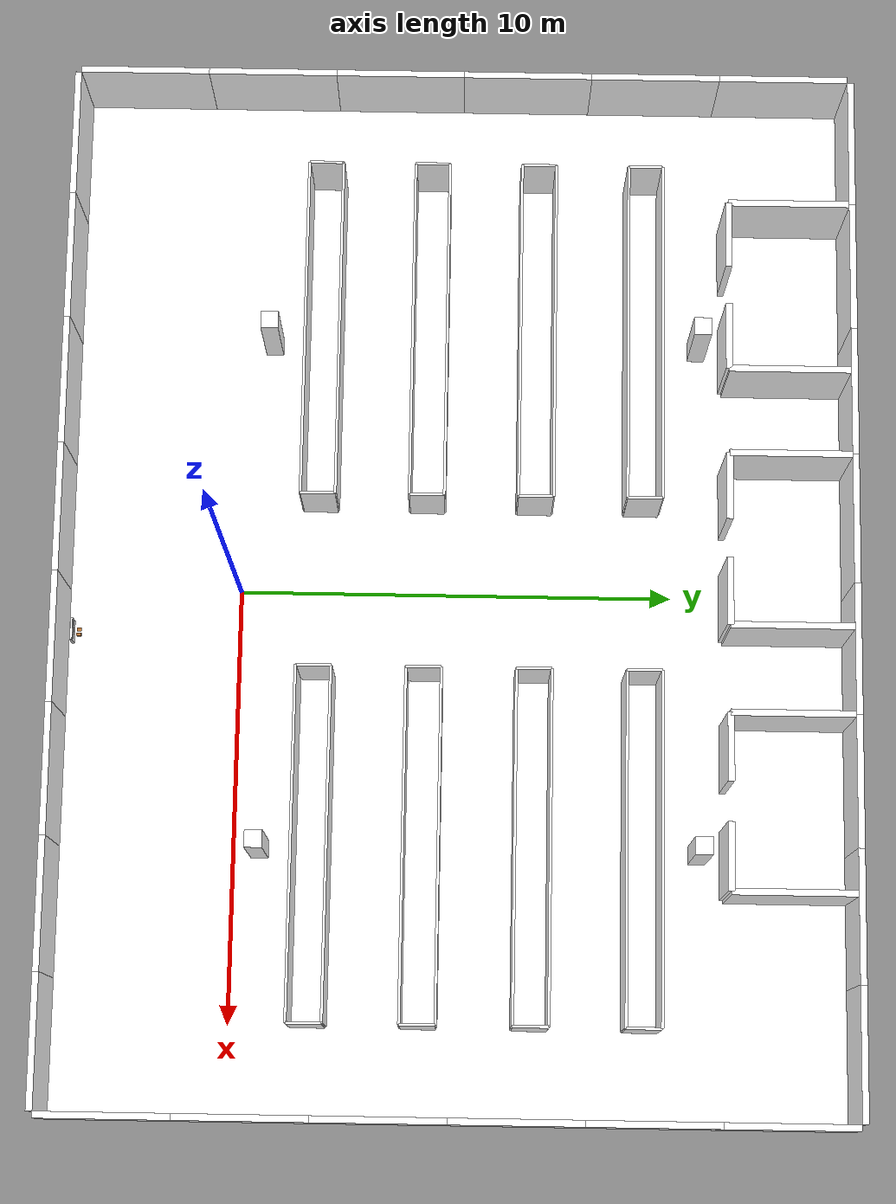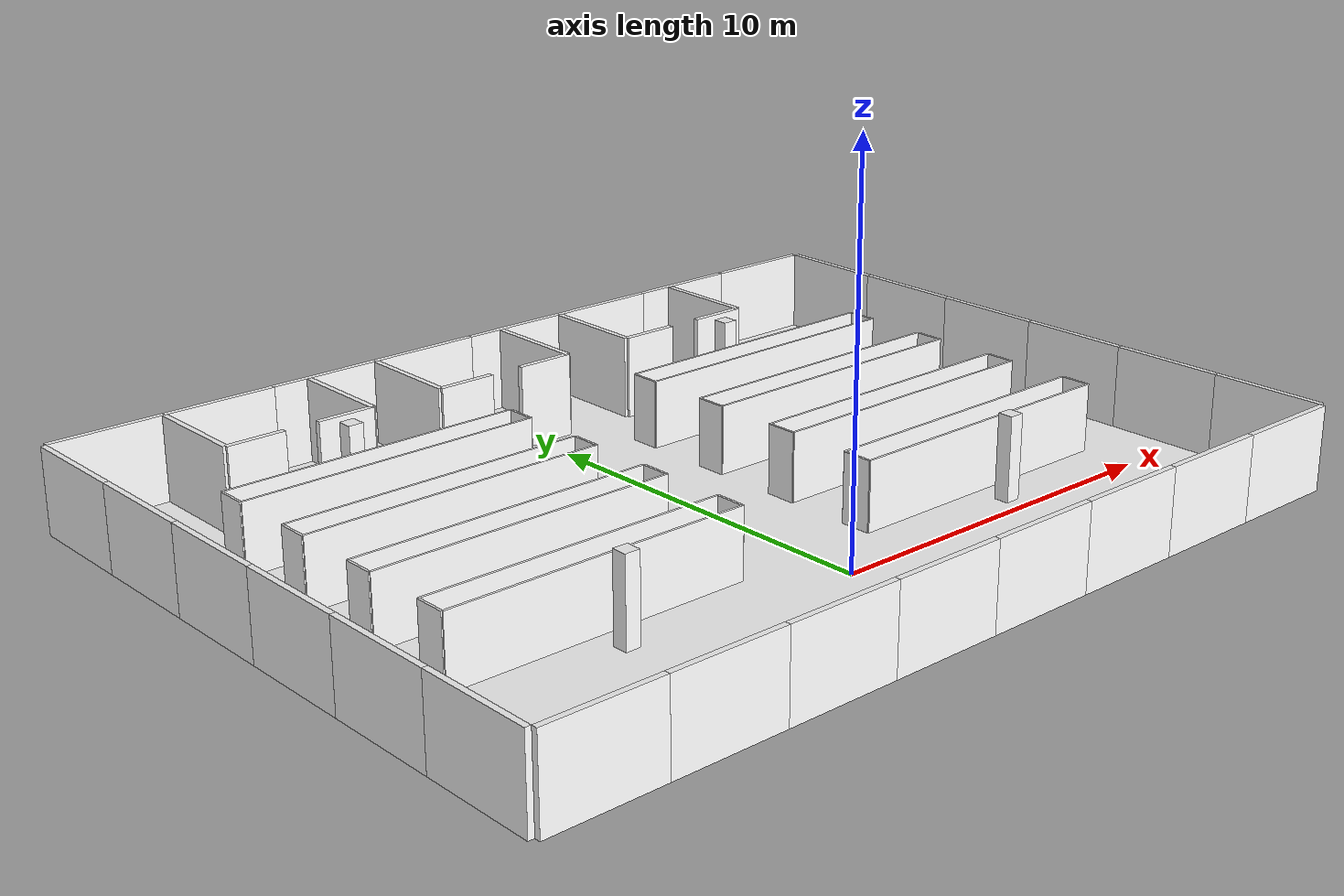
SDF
<?xml version="1.0" ?>
<!-- generate_hall.py 로 생성됨. 직접 수정하지 말고 생성기를 고치세요. -->
<sdf version="1.9">
  <world name="hall">

    <physics name="1ms" type="ignored">
      <max_step_size>0.001</max_step_size>
      <real_time_factor>1.0</real_time_factor>
    </physics>

    <plugin filename="gz-sim-physics-system"
            name="gz::sim::systems::Physics"/>
    <plugin filename="gz-sim-user-commands-system"
            name="gz::sim::systems::UserCommands"/>
    <plugin filename="gz-sim-scene-broadcaster-system"
            name="gz::sim::systems::SceneBroadcaster"/>
    <!-- 카메라/뎁스 렌더링에 필요 -->
    <plugin filename="gz-sim-sensors-system"
            name="gz::sim::systems::Sensors">
      <render_engine>ogre2</render_engine>
    </plugin>
    <plugin filename="gz-sim-imu-system"
            name="gz::sim::systems::Imu"/>
    <plugin filename="gz-sim-contact-system"
            name="gz::sim::systems::Contact"/>

    <gravity>0 0 -9.8</gravity>

    <scene>
      <ambient>0.65 0.65 0.65 1</ambient>
      <background>0.75 0.82 0.9 1</background>
      <shadows>true</shadows>
    </scene>

    <!-- 넓은 공간이라 광원을 셋으로 나눕니다. 그림자로 특징점이 사라지는
         구역이 생기면 VSLAM 이 그 자리에서 끊깁니다. -->
    <light type="directional" name="sun">
      <cast_shadows>true</cast_shadows>
      <pose>0 0 10 0 0 0</pose>
      <diffuse>0.6 0.6 0.6 1</diffuse>
      <specular>0.1 0.1 0.1 1</specular>
      <direction>-0.4 0.3 -0.9</direction>
    </light>
    <light type="directional" name="fill1">
      <cast_shadows>false</cast_shadows>
      <pose>0 0 10 0 0 0</pose>
      <diffuse>0.3 0.3 0.34 1</diffuse>
      <specular>0 0 0 1</specular>
      <direction>0.5 -0.4 -0.8</direction>
    </light>
    <light type="directional" name="fill2">
      <cast_shadows>false</cast_shadows>
      <pose>0 0 10 0 0 0</pose>
      <diffuse>0.25 0.25 0.28 1</diffuse>
      <specular>0 0 0 1</specular>
      <direction>0.1 0.9 -0.6</direction>
    </light>

    <model name="ground_plane">
      <static>true</static>
      <link name="link">
        <collision name="collision">
          <geometry><plane><normal>0 0 1</normal><size>200 200</size></plane></geometry>
          <surface><friction><ode><mu>1.0</mu><mu2>1.0</mu2></ode></friction></surface>
        </collision>
      </link>
    </model>

    <model name="floor">
      <static>true</static>
      <pose>0.000 5.000 -0.005 0 0 0</pose>
      <link name="link"><visual name="v">
        <geometry><box><size>24.00 18.00 0.01</size></box></geometry>
        <material><diffuse>1 1 1 1</diffuse><pbr><metal>
          <albedo_map>model://room_materials/materials/textures/floor.png</albedo_map><roughness>0.95</roughness>
        </metal></pbr></material>
      </visual></link>
    </model>
    <model name="wall_s_0">
      <static>true</static>
      <pose>-10.5000 -4.0750 1.1000 0 0 0</pose>
      <link name="link">
      <collision name="c">
        <pose>0 0 0 0 0 0</pose>
        <geometry><box><size>3.0000 0.1500 2.2000</size></box></geometry>
      </collision>
      <visual name="v">
        <pose>0 0 0 0 0 0</pose>
        <geometry><box><size>3.0000 0.1500 2.2000</size></box></geometry>
        <material>
          <diffuse>1 1 1 1</diffuse>
          <pbr><metal>
            <albedo_map>model://room_materials/materials/textures/hall_000.png</albedo_map>
            <roughness>0.9</roughness>
          </metal></pbr>
        </material>
      </visual>
      </link>
    </model>
    <model name="wall_n_1">
      <static>true</static>
      <pose>-10.5000 14.0750 1.1000 0 0 0</pose>
      <link name="link">
      <collision name="c">
        <pose>0 0 0 0 0 0</pose>
        <geometry><box><size>3.0000 0.1500 2.2000</size></box></geometry>
      </collision>
      <visual name="v">
        <pose>0 0 0 0 0 0</pose>
        <geometry><box><size>3.0000 0.1500 2.2000</size></box></geometry>
        <material>
          <diffuse>1 1 1 1</diffuse>
          <pbr><metal>
            <albedo_map>model://room_materials/materials/textures/hall_001.png</albedo_map>
            <roughness>0.9</roughness>
          </metal></pbr>
        </material>
      </visual>
      </link>
    </model>
    <model name="wall_s_2">
      <static>true</static>
      <pose>-7.5000 -4.0750 1.1000 0 0 0</pose>
      <link name="link">
      <collision name="c">
        <pose>0 0 0 0 0 0</pose>
        <geometry><box><size>3.0000 0.1500 2.2000</size></box></geometry>
      </collision>
      <visual name="v">
        <pose>0 0 0 0 0 0</pose>
        <geometry><box><size>3.0000 0.1500 2.2000</size></box></geometry>
        <material>
          <diffuse>1 1 1 1</diffuse>
          <pbr><metal>
            <albedo_map>model://room_materials/materials/textures/hall_002.png</albedo_map>
            <roughness>0.9</roughness>
          </metal></pbr>
        </material>
      </visual>
      </link>
    </model>
    <model name="wall_n_3">
      <static>true</static>
      <pose>-7.5000 14.0750 1.1000 0 0 0</pose>
      <link name="link">
      <collision name="c">
        <pose>0 0 0 0 0 0</pose>
        <geometry><box><size>3.0000 0.1500 2.2000</size></box></geometry>
      </collision>
      <visual name="v">
        <pose>0 0 0 0 0 0</pose>
        <geometry><box><size>3.0000 0.1500 2.2000</size></box></geometry>
        <material>
          <diffuse>1 1 1 1</diffuse>
          <pbr><metal>
            <albedo_map>model://room_materials/materials/textures/hall_003.png</albedo_map>
            <roughness>0.9</roughness>
          </metal></pbr>
        </material>
      </visual>
      </link>
    </model>
    <model name="wall_s_4">
      <static>true</static>
      <pose>-4.5000 -4.0750 1.1000 0 0 0</pose>
      <link name="link">
      <collision name="c">
        <pose>0 0 0 0 0 0</pose>
        <geometry><box><size>3.0000 0.1500 2.2000</size></box></geometry>
      </collision>
      <visual name="v">
        <pose>0 0 0 0 0 0</pose>
        <geometry><box><size>3.0000 0.1500 2.2000</size></box></geometry>
        <material>
          <diffuse>1 1 1 1</diffuse>
          <pbr><metal>
            <albedo_map>model://room_materials/materials/textures/hall_004.png</albedo_map>
            <roughness>0.9</roughness>
          </metal></pbr>
        </material>
      </visual>
      </link>
    </model>
    <model name="wall_n_5">
      <static>true</static>
      <pose>-4.5000 14.0750 1.1000 0 0 0</pose>
      <link name="link">
      <collision name="c">
        <pose>0 0 0 0 0 0</pose>
        <geometry><box><size>3.0000 0.1500 2.2000</size></box></geometry>
      </collision>
      <visual name="v">
        <pose>0 0 0 0 0 0</pose>
        <geometry><box><size>3.0000 0.1500 2.2000</size></box></geometry>
        <material>
          <diffuse>1 1 1 1</diffuse>
          <pbr><metal>
            <albedo_map>model://room_materials/materials/textures/hall_005.png</albedo_map>
            <roughness>0.9</roughness>
          </metal></pbr>
        </material>
      </visual>
      </link>
    </model>
    <model name="wall_s_6">
      <static>true</static>
      <pose>-1.5000 -4.0750 1.1000 0 0 0</pose>
      <link name="link">
      <collision name="c">
        <pose>0 0 0 0 0 0</pose>
        <geometry><box><size>3.0000 0.1500 2.2000</size></box></geometry>
      </collision>
      <visual name="v">
        <pose>0 0 0 0 0 0</pose>
        <geometry><box><size>3.0000 0.1500 2.2000</size></box></geometry>
        <material>
          <diffuse>1 1 1 1</diffuse>
          <pbr><metal>
            <albedo_map>model://room_materials/materials/textures/hall_006.png</albedo_map>
            <roughness>0.9</roughness>
          </metal></pbr>
        </material>
      </visual>
      </link>
    </model>
    <model name="wall_n_7">
      <static>true</static>
      <pose>-1.5000 14.0750 1.1000 0 0 0</pose>
      <link name="link">
      <collision name="c">
        <pose>0 0 0 0 0 0</pose>
        <geometry><box><size>3.0000 0.1500 2.2000</size></box></geometry>
      </collision>
      <visual name="v">
        <pose>0 0 0 0 0 0</pose>
        <geometry><box><size>3.0000 0.1500 2.2000</size></box></geometry>
        <material>
          <diffuse>1 1 1 1</diffuse>
          <pbr><metal>
            <albedo_map>model://room_materials/materials/textures/hall_007.png</albedo_map>
            <roughness>0.9</roughness>
          </metal></pbr>
        </material>
      </visual>
      </link>
    </model>
    <model name="wall_s_8">
      <static>true</static>
      <pose>1.5000 -4.0750 1.1000 0 0 0</pose>
      <link name="link">
      <collision name="c">
        <pose>0 0 0 0 0 0</pose>
        <geometry><box><size>3.0000 0.1500 2.2000</size></box></geometry>
      </collision>
      <visual name="v">
        <pose>0 0 0 0 0 0</pose>
        <geometry><box><size>3.0000 0.1500 2.2000</size></box></geometry>
        <material>
          <diffuse>1 1 1 1</diffuse>
          <pbr><metal>
            <albedo_map>model://room_materials/materials/textures/hall_008.png</albedo_map>
            <roughness>0.9</roughness>
          </metal></pbr>
        </material>
      </visual>
      </link>
    </model>
    <model name="wall_n_9">
      <static>true</static>
      <pose>1.5000 14.0750 1.1000 0 0 0</pose>
      <link name="link">
      <collision name="c">
        <pose>0 0 0 0 0 0</pose>
        <geometry><box><size>3.0000 0.1500 2.2000</size></box></geometry>
      </collision>
      <visual name="v">
        <pose>0 0 0 0 0 0</pose>
        <geometry><box><size>3.0000 0.1500 2.2000</size></box></geometry>
        <material>
          <diffuse>1 1 1 1</diffuse>
          <pbr><metal>
            <albedo_map>model://room_materials/materials/textures/hall_009.png</albedo_map>
            <roughness>0.9</roughness>
          </metal></pbr>
        </material>
      </visual>
      </link>
    </model>
    <model name="wall_s_10">
      <static>true</static>
      <pose>4.5000 -4.0750 1.1000 0 0 0</pose>
      <link name="link">
      <collision name="c">
        <pose>0 0 0 0 0 0</pose>
        <geometry><box><size>3.0000 0.1500 2.2000</size></box></geometry>
      </collision>
      <visual name="v">
        <pose>0 0 0 0 0 0</pose>
        <geometry><box><size>3.0000 0.1500 2.2000</size></box></geometry>
        <material>
          <diffuse>1 1 1 1</diffuse>
          <pbr><metal>
            <albedo_map>model://room_materials/materials/textures/hall_010.png</albedo_map>
            <roughness>0.9</roughness>
          </metal></pbr>
        </material>
      </visual>
      </link>
    </model>
    <model name="wall_n_11">
      <static>true</static>
      <pose>4.5000 14.0750 1.1000 0 0 0</pose>
      <link name="link">
      <collision name="c">
        <pose>0 0 0 0 0 0</pose>
        <geometry><box><size>3.0000 0.1500 2.2000</size></box></geometry>
      </collision>
      <visual name="v">
        <pose>0 0 0 0 0 0</pose>
        <geometry><box><size>3.0000 0.1500 2.2000</size></box></geometry>
        <material>
          <diffuse>1 1 1 1</diffuse>
          <pbr><metal>
            <albedo_map>model://room_materials/materials/textures/hall_011.png</albedo_map>
            <roughness>0.9</roughness>
          </metal></pbr>
        </material>
      </visual>
      </link>
    </model>
    <model name="wall_s_12">
      <static>true</static>
      <pose>7.5000 -4.0750 1.1000 0 0 0</pose>
      <link name="link">
      <collision name="c">
        <pose>0 0 0 0 0 0</pose>
        <geometry><box><size>3.0000 0.1500 2.2000</size></box></geometry>
      </collision>
      <visual name="v">
        <pose>0 0 0 0 0 0</pose>
        <geometry><box><size>3.0000 0.1500 2.2000</size></box></geometry>
        <material>
          <diffuse>1 1 1 1</diffuse>
          <pbr><metal>
            <albedo_map>model://room_materials/materials/textures/hall_012.png</albedo_map>
            <roughness>0.9</roughness>
          </metal></pbr>
        </material>
      </visual>
      </link>
    </model>
    <model name="wall_n_13">
      <static>true</static>
      <pose>7.5000 14.0750 1.1000 0 0 0</pose>
      <link name="link">
      <collision name="c">
        <pose>0 0 0 0 0 0</pose>
        <geometry><box><size>3.0000 0.1500 2.2000</size></box></geometry>
      </collision>
      <visual name="v">
        <pose>0 0 0 0 0 0</pose>
        <geometry><box><size>3.0000 0.1500 2.2000</size></box></geometry>
        <material>
          <diffuse>1 1 1 1</diffuse>
          <pbr><metal>
            <albedo_map>model://room_materials/materials/textures/hall_013.png</albedo_map>
            <roughness>0.9</roughness>
          </metal></pbr>
        </material>
      </visual>
      </link>
    </model>
    <model name="wall_s_14">
      <static>true</static>
      <pose>10.5000 -4.0750 1.1000 0 0 0</pose>
      <link name="link">
      <collision name="c">
        <pose>0 0 0 0 0 0</pose>
        <geometry><box><size>3.0000 0.1500 2.2000</size></box></geometry>
      </collision>
      <visual name="v">
        <pose>0 0 0 0 0 0</pose>
        <geometry><box><size>3.0000 0.1500 2.2000</size></box></geometry>
        <material>
          <diffuse>1 1 1 1</diffuse>
          <pbr><metal>
            <albedo_map>model://room_materials/materials/textures/hall_014.png</albedo_map>
            <roughness>0.9</roughness>
          </metal></pbr>
        </material>
      </visual>
      </link>
    </model>
    <model name="wall_n_15">
      <static>true</static>
      <pose>10.5000 14.0750 1.1000 0 0 0</pose>
      <link name="link">
      <collision name="c">
        <pose>0 0 0 0 0 0</pose>
        <geometry><box><size>3.0000 0.1500 2.2000</size></box></geometry>
      </collision>
      <visual name="v">
        <pose>0 0 0 0 0 0</pose>
        <geometry><box><size>3.0000 0.1500 2.2000</size></box></geometry>
        <material>
          <diffuse>1 1 1 1</diffuse>
          <pbr><metal>
            <albedo_map>model://room_materials/materials/textures/hall_015.png</albedo_map>
            <roughness>0.9</roughness>
          </metal></pbr>
        </material>
      </visual>
      </link>
    </model>
    <model name="wall_w_16">
      <static>true</static>
      <pose>-12.0750 -2.5000 1.1000 0 0 0</pose>
      <link name="link">
      <collision name="c">
        <pose>0 0 0 0 0 0</pose>
        <geometry><box><size>0.1500 3.0000 2.2000</size></box></geometry>
      </collision>
      <visual name="v">
        <pose>0 0 0 0 0 0</pose>
        <geometry><box><size>0.1500 3.0000 2.2000</size></box></geometry>
        <material>
          <diffuse>1 1 1 1</diffuse>
          <pbr><metal>
            <albedo_map>model://room_materials/materials/textures/hall_016.png</albedo_map>
            <roughness>0.9</roughness>
          </metal></pbr>
        </material>
      </visual>
      </link>
    </model>
    <model name="wall_e_17">
      <static>true</static>
      <pose>12.0750 -2.5000 1.1000 0 0 0</pose>
      <link name="link">
      <collision name="c">
        <pose>0 0 0 0 0 0</pose>
        <geometry><box><size>0.1500 3.0000 2.2000</size></box></geometry>
      </collision>
      <visual name="v">
        <pose>0 0 0 0 0 0</pose>
        <geometry><box><size>0.1500 3.0000 2.2000</size></box></geometry>
        <material>
          <diffuse>1 1 1 1</diffuse>
          <pbr><metal>
            <albedo_map>model://room_materials/materials/textures/hall_017.png</albedo_map>
            <roughness>0.9</roughness>
          </metal></pbr>
        </material>
      </visual>
      </link>
    </model>
    <model name="wall_w_18">
      <static>true</static>
      <pose>-12.0750 0.5000 1.1000 0 0 0</pose>
      <link name="link">
      <collision name="c">
        <pose>0 0 0 0 0 0</pose>
        <geometry><box><size>0.1500 3.0000 2.2000</size></box></geometry>
      </collision>
      <visual name="v">
        <pose>0 0 0 0 0 0</pose>
        <geometry><box><size>0.1500 3.0000 2.2000</size></box></geometry>
        <material>
          <diffuse>1 1 1 1</diffuse>
          <pbr><metal>
            <albedo_map>model://room_materials/materials/textures/hall_018.png</albedo_map>
            <roughness>0.9</roughness>
          </metal></pbr>
        </material>
      </visual>
      </link>
    </model>
    <model name="wall_e_19">
      <static>true</static>
      <pose>12.0750 0.5000 1.1000 0 0 0</pose>
      <link name="link">
      <collision name="c">
        <pose>0 0 0 0 0 0</pose>
        <geometry><box><size>0.1500 3.0000 2.2000</size></box></geometry>
      </collision>
      <visual name="v">
        <pose>0 0 0 0 0 0</pose>
        <geometry><box><size>0.1500 3.0000 2.2000</size></box></geometry>
        <material>
          <diffuse>1 1 1 1</diffuse>
          <pbr><metal>
            <albedo_map>model://room_materials/materials/textures/hall_019.png</albedo_map>
            <roughness>0.9</roughness>
          </metal></pbr>
        </material>
      </visual>
      </link>
    </model>
    <model name="wall_w_20">
      <static>true</static>
      <pose>-12.0750 3.5000 1.1000 0 0 0</pose>
      <link name="link">
      <collision name="c">
        <pose>0 0 0 0 0 0</pose>
        <geometry><box><size>0.1500 3.0000 2.2000</size></box></geometry>
      </collision>
      <visual name="v">
        <pose>0 0 0 0 0 0</pose>
        <geometry><box><size>0.1500 3.0000 2.2000</size></box></geometry>
        <material>
          <diffuse>1 1 1 1</diffuse>
          <pbr><metal>
            <albedo_map>model://room_materials/materials/textures/hall_020.png</albedo_map>
            <roughness>0.9</roughness>
          </metal></pbr>
        </material>
      </visual>
      </link>
    </model>
    <model name="wall_e_21">
      <static>true</static>
      <pose>12.0750 3.5000 1.1000 0 0 0</pose>
      <link name="link">
      <collision name="c">
        <pose>0 0 0 0 0 0</pose>
        <geometry><box><size>0.1500 3.0000 2.2000</size></box></geometry>
      </collision>
      <visual name="v">
        <pose>0 0 0 0 0 0</pose>
        <geometry><box><size>0.1500 3.0000 2.2000</size></box></geometry>
        <material>
          <diffuse>1 1 1 1</diffuse>
          <pbr><metal>
            <albedo_map>model://room_materials/materials/textures/hall_021.png</albedo_map>
            <roughness>0.9</roughness>
          </metal></pbr>
        </material>
      </visual>
      </link>
    </model>
    <model name="wall_w_22">
      <static>true</static>
      <pose>-12.0750 6.5000 1.1000 0 0 0</pose>
      <link name="link">
      <collision name="c">
        <pose>0 0 0 0 0 0</pose>
        <geometry><box><size>0.1500 3.0000 2.2000</size></box></geometry>
      </collision>
      <visual name="v">
        <pose>0 0 0 0 0 0</pose>
        <geometry><box><size>0.1500 3.0000 2.2000</size></box></geometry>
        <material>
          <diffuse>1 1 1 1</diffuse>
          <pbr><metal>
            <albedo_map>model://room_materials/materials/textures/hall_022.png</albedo_map>
            <roughness>0.9</roughness>
          </metal></pbr>
        </material>
      </visual>
      </link>
    </model>
    <model name="wall_e_23">
      <static>true</static>
      <pose>12.0750 6.5000 1.1000 0 0 0</pose>
      <link name="link">
      <collision name="c">
        <pose>0 0 0 0 0 0</pose>
        <geometry><box><size>0.1500 3.0000 2.2000</size></box></geometry>
      </collision>
      <visual name="v">
        <pose>0 0 0 0 0 0</pose>
        <geometry><box><size>0.1500 3.0000 2.2000</size></box></geometry>
        <material>
          <diffuse>1 1 1 1</diffuse>
          <pbr><metal>
            <albedo_map>model://room_materials/materials/textures/hall_023.png</albedo_map>
            <roughness>0.9</roughness>
          </metal></pbr>
        </material>
      </visual>
      </link>
    </model>
    <model name="wall_w_24">
      <static>true</static>
      <pose>-12.0750 9.5000 1.1000 0 0 0</pose>
      <link name="link">
      <collision name="c">
        <pose>0 0 0 0 0 0</pose>
        <geometry><box><size>0.1500 3.0000 2.2000</size></box></geometry>
      </collision>
      <visual name="v">
        <pose>0 0 0 0 0 0</pose>
        <geometry><box><size>0.1500 3.0000 2.2000</size></box></geometry>
        <material>
          <diffuse>1 1 1 1</diffuse>
          <pbr><metal>
            <albedo_map>model://room_materials/materials/textures/hall_024.png</albedo_map>
            <roughness>0.9</roughness>
          </metal></pbr>
        </material>
      </visual>
      </link>
    </model>
    <model name="wall_e_25">
      <static>true</static>
      <pose>12.0750 9.5000 1.1000 0 0 0</pose>
      <link name="link">
      <collision name="c">
        <pose>0 0 0 0 0 0</pose>
        <geometry><box><size>0.1500 3.0000 2.2000</size></box></geometry>
      </collision>
      <visual name="v">
        <pose>0 0 0 0 0 0</pose>
        <geometry><box><size>0.1500 3.0000 2.2000</size></box></geometry>
        <material>
          <diffuse>1 1 1 1</diffuse>
          <pbr><metal>
            <albedo_map>model://room_materials/materials/textures/hall_025.png</albedo_map>
            <roughness>0.9</roughness>
          </metal></pbr>
        </material>
      </visual>
      </link>
    </model>
    <model name="wall_w_26">
      <static>true</static>
      <pose>-12.0750 12.5000 1.1000 0 0 0</pose>
      <link name="link">
      <collision name="c">
        <pose>0 0 0 0 0 0</pose>
        <geometry><box><size>0.1500 3.0000 2.2000</size></box></geometry>
      </collision>
      <visual name="v">
        <pose>0 0 0 0 0 0</pose>
        <geometry><box><size>0.1500 3.0000 2.2000</size></box></geometry>
        <material>
          <diffuse>1 1 1 1</diffuse>
          <pbr><metal>
            <albedo_map>model://room_materials/materials/textures/hall_026.png</albedo_map>
            <roughness>0.9</roughness>
          </metal></pbr>
        </material>
      </visual>
      </link>
    </model>
    <model name="wall_e_27">
      <static>true</static>
      <pose>12.0750 12.5000 1.1000 0 0 0</pose>
      <link name="link">
      <collision name="c">
        <pose>0 0 0 0 0 0</pose>
        <geometry><box><size>0.1500 3.0000 2.2000</size></box></geometry>
      </collision>
      <visual name="v">
        <pose>0 0 0 0 0 0</pose>
        <geometry><box><size>0.1500 3.0000 2.2000</size></box></geometry>
        <material>
          <diffuse>1 1 1 1</diffuse>
          <pbr><metal>
            <albedo_map>model://room_materials/materials/textures/hall_027.png</albedo_map>
            <roughness>0.9</roughness>
          </metal></pbr>
        </material>
      </visual>
      </link>
    </model>
    <model name="rack_0_s">
      <static>true</static>
      <pose>-6.0000 1.4000 0.9000 0 0 0</pose>
      <link name="link">
      <collision name="c">
        <pose>0 0 0 0 0 0</pose>
        <geometry><box><size>8.0000 0.0600 1.8000</size></box></geometry>
      </collision>
      <visual name="v">
        <pose>0 0 0 0 0 0</pose>
        <geometry><box><size>8.0000 0.0600 1.8000</size></box></geometry>
        <material>
          <diffuse>1 1 1 1</diffuse>
          <pbr><metal>
            <albedo_map>model://room_materials/materials/textures/hall_028.png</albedo_map>
            <roughness>0.9</roughness>
          </metal></pbr>
        </material>
      </visual>
      </link>
    </model>
    <model name="rack_0_n">
      <static>true</static>
      <pose>-6.0000 2.2000 0.9000 0 0 0</pose>
      <link name="link">
      <collision name="c">
        <pose>0 0 0 0 0 0</pose>
        <geometry><box><size>8.0000 0.0600 1.8000</size></box></geometry>
      </collision>
      <visual name="v">
        <pose>0 0 0 0 0 0</pose>
        <geometry><box><size>8.0000 0.0600 1.8000</size></box></geometry>
        <material>
          <diffuse>1 1 1 1</diffuse>
          <pbr><metal>
            <albedo_map>model://room_materials/materials/textures/hall_029.png</albedo_map>
            <roughness>0.9</roughness>
          </metal></pbr>
        </material>
      </visual>
      </link>
    </model>
    <model name="rack_0_w">
      <static>true</static>
      <pose>-10.0000 1.8000 0.9000 0 0 0</pose>
      <link name="link">
      <collision name="c">
        <pose>0 0 0 0 0 0</pose>
        <geometry><box><size>0.0600 0.8000 1.8000</size></box></geometry>
      </collision>
      <visual name="v">
        <pose>0 0 0 0 0 0</pose>
        <geometry><box><size>0.0600 0.8000 1.8000</size></box></geometry>
        <material>
          <diffuse>1 1 1 1</diffuse>
          <pbr><metal>
            <albedo_map>model://room_materials/materials/textures/hall_030.png</albedo_map>
            <roughness>0.9</roughness>
          </metal></pbr>
        </material>
      </visual>
      </link>
    </model>
    <model name="rack_0_e">
      <static>true</static>
      <pose>-2.0000 1.8000 0.9000 0 0 0</pose>
      <link name="link">
      <collision name="c">
        <pose>0 0 0 0 0 0</pose>
        <geometry><box><size>0.0600 0.8000 1.8000</size></box></geometry>
      </collision>
      <visual name="v">
        <pose>0 0 0 0 0 0</pose>
        <geometry><box><size>0.0600 0.8000 1.8000</size></box></geometry>
        <material>
          <diffuse>1 1 1 1</diffuse>
          <pbr><metal>
            <albedo_map>model://room_materials/materials/textures/hall_031.png</albedo_map>
            <roughness>0.9</roughness>
          </metal></pbr>
        </material>
      </visual>
      </link>
    </model>
    <model name="rack_1_s">
      <static>true</static>
      <pose>-6.0000 3.9000 0.9000 0 0 0</pose>
      <link name="link">
      <collision name="c">
        <pose>0 0 0 0 0 0</pose>
        <geometry><box><size>8.0000 0.0600 1.8000</size></box></geometry>
      </collision>
      <visual name="v">
        <pose>0 0 0 0 0 0</pose>
        <geometry><box><size>8.0000 0.0600 1.8000</size></box></geometry>
        <material>
          <diffuse>1 1 1 1</diffuse>
          <pbr><metal>
            <albedo_map>model://room_materials/materials/textures/hall_032.png</albedo_map>
            <roughness>0.9</roughness>
          </metal></pbr>
        </material>
      </visual>
      </link>
    </model>
    <model name="rack_1_n">
      <static>true</static>
      <pose>-6.0000 4.7000 0.9000 0 0 0</pose>
      <link name="link">
      <collision name="c">
        <pose>0 0 0 0 0 0</pose>
        <geometry><box><size>8.0000 0.0600 1.8000</size></box></geometry>
      </collision>
      <visual name="v">
        <pose>0 0 0 0 0 0</pose>
        <geometry><box><size>8.0000 0.0600 1.8000</size></box></geometry>
        <material>
          <diffuse>1 1 1 1</diffuse>
          <pbr><metal>
            <albedo_map>model://room_materials/materials/textures/hall_033.png</albedo_map>
            <roughness>0.9</roughness>
          </metal></pbr>
        </material>
      </visual>
      </link>
    </model>
    <model name="rack_1_w">
      <static>true</static>
      <pose>-10.0000 4.3000 0.9000 0 0 0</pose>
      <link name="link">
      <collision name="c">
        <pose>0 0 0 0 0 0</pose>
        <geometry><box><size>0.0600 0.8000 1.8000</size></box></geometry>
      </collision>
      <visual name="v">
        <pose>0 0 0 0 0 0</pose>
        <geometry><box><size>0.0600 0.8000 1.8000</size></box></geometry>
        <material>
          <diffuse>1 1 1 1</diffuse>
          <pbr><metal>
            <albedo_map>model://room_materials/materials/textures/hall_034.png</albedo_map>
            <roughness>0.9</roughness>
          </metal></pbr>
        </material>
      </visual>
      </link>
    </model>
    <model name="rack_1_e">
      <static>true</static>
      <pose>-2.0000 4.3000 0.9000 0 0 0</pose>
      <link name="link">
      <collision name="c">
        <pose>0 0 0 0 0 0</pose>
        <geometry><box><size>0.0600 0.8000 1.8000</size></box></geometry>
      </collision>
      <visual name="v">
        <pose>0 0 0 0 0 0</pose>
        <geometry><box><size>0.0600 0.8000 1.8000</size></box></geometry>
        <material>
          <diffuse>1 1 1 1</diffuse>
          <pbr><metal>
            <albedo_map>model://room_materials/materials/textures/hall_035.png</albedo_map>
            <roughness>0.9</roughness>
          </metal></pbr>
        </material>
      </visual>
      </link>
    </model>
    <model name="rack_2_s">
      <static>true</static>
      <pose>-6.0000 6.4000 0.9000 0 0 0</pose>
      <link name="link">
      <collision name="c">
        <pose>0 0 0 0 0 0</pose>
        <geometry><box><size>8.0000 0.0600 1.8000</size></box></geometry>
      </collision>
      <visual name="v">
        <pose>0 0 0 0 0 0</pose>
        <geometry><box><size>8.0000 0.0600 1.8000</size></box></geometry>
        <material>
          <diffuse>1 1 1 1</diffuse>
          <pbr><metal>
            <albedo_map>model://room_materials/materials/textures/hall_036.png</albedo_map>
            <roughness>0.9</roughness>
          </metal></pbr>
        </material>
      </visual>
      </link>
    </model>
    <model name="rack_2_n">
      <static>true</static>
      <pose>-6.0000 7.2000 0.9000 0 0 0</pose>
      <link name="link">
      <collision name="c">
        <pose>0 0 0 0 0 0</pose>
        <geometry><box><size>8.0000 0.0600 1.8000</size></box></geometry>
      </collision>
      <visual name="v">
        <pose>0 0 0 0 0 0</pose>
        <geometry><box><size>8.0000 0.0600 1.8000</size></box></geometry>
        <material>
          <diffuse>1 1 1 1</diffuse>
          <pbr><metal>
            <albedo_map>model://room_materials/materials/textures/hall_037.png</albedo_map>
            <roughness>0.9</roughness>
          </metal></pbr>
        </material>
      </visual>
      </link>
    </model>
    <model name="rack_2_w">
      <static>true</static>
      <pose>-10.0000 6.8000 0.9000 0 0 0</pose>
      <link name="link">
      <collision name="c">
        <pose>0 0 0 0 0 0</pose>
        <geometry><box><size>0.0600 0.8000 1.8000</size></box></geometry>
      </collision>
      <visual name="v">
        <pose>0 0 0 0 0 0</pose>
        <geometry><box><size>0.0600 0.8000 1.8000</size></box></geometry>
        <material>
          <diffuse>1 1 1 1</diffuse>
          <pbr><metal>
            <albedo_map>model://room_materials/materials/textures/hall_038.png</albedo_map>
            <roughness>0.9</roughness>
          </metal></pbr>
        </material>
      </visual>
      </link>
    </model>
    <model name="rack_2_e">
      <static>true</static>
      <pose>-2.0000 6.8000 0.9000 0 0 0</pose>
      <link name="link">
      <collision name="c">
        <pose>0 0 0 0 0 0</pose>
        <geometry><box><size>0.0600 0.8000 1.8000</size></box></geometry>
      </collision>
      <visual name="v">
        <pose>0 0 0 0 0 0</pose>
        <geometry><box><size>0.0600 0.8000 1.8000</size></box></geometry>
        <material>
          <diffuse>1 1 1 1</diffuse>
          <pbr><metal>
            <albedo_map>model://room_materials/materials/textures/hall_039.png</albedo_map>
            <roughness>0.9</roughness>
          </metal></pbr>
        </material>
      </visual>
      </link>
    </model>
    <model name="rack_3_s">
      <static>true</static>
      <pose>-6.0000 8.9000 0.9000 0 0 0</pose>
      <link name="link">
      <collision name="c">
        <pose>0 0 0 0 0 0</pose>
        <geometry><box><size>8.0000 0.0600 1.8000</size></box></geometry>
      </collision>
      <visual name="v">
        <pose>0 0 0 0 0 0</pose>
        <geometry><box><size>8.0000 0.0600 1.8000</size></box></geometry>
        <material>
          <diffuse>1 1 1 1</diffuse>
          <pbr><metal>
            <albedo_map>model://room_materials/materials/textures/hall_040.png</albedo_map>
            <roughness>0.9</roughness>
          </metal></pbr>
        </material>
      </visual>
      </link>
    </model>
    <model name="rack_3_n">
      <static>true</static>
      <pose>-6.0000 9.7000 0.9000 0 0 0</pose>
      <link name="link">
      <collision name="c">
        <pose>0 0 0 0 0 0</pose>
        <geometry><box><size>8.0000 0.0600 1.8000</size></box></geometry>
      </collision>
      <visual name="v">
        <pose>0 0 0 0 0 0</pose>
        <geometry><box><size>8.0000 0.0600 1.8000</size></box></geometry>
        <material>
          <diffuse>1 1 1 1</diffuse>
          <pbr><metal>
            <albedo_map>model://room_materials/materials/textures/hall_041.png</albedo_map>
            <roughness>0.9</roughness>
          </metal></pbr>
        </material>
      </visual>
      </link>
    </model>
    <model name="rack_3_w">
      <static>true</static>
      <pose>-10.0000 9.3000 0.9000 0 0 0</pose>
      <link name="link">
      <collision name="c">
        <pose>0 0 0 0 0 0</pose>
        <geometry><box><size>0.0600 0.8000 1.8000</size></box></geometry>
      </collision>
      <visual name="v">
        <pose>0 0 0 0 0 0</pose>
        <geometry><box><size>0.0600 0.8000 1.8000</size></box></geometry>
        <material>
          <diffuse>1 1 1 1</diffuse>
          <pbr><metal>
            <albedo_map>model://room_materials/materials/textures/hall_042.png</albedo_map>
            <roughness>0.9</roughness>
          </metal></pbr>
        </material>
      </visual>
      </link>
    </model>
    <model name="rack_3_e">
      <static>true</static>
      <pose>-2.0000 9.3000 0.9000 0 0 0</pose>
      <link name="link">
      <collision name="c">
        <pose>0 0 0 0 0 0</pose>
        <geometry><box><size>0.0600 0.8000 1.8000</size></box></geometry>
      </collision>
      <visual name="v">
        <pose>0 0 0 0 0 0</pose>
        <geometry><box><size>0.0600 0.8000 1.8000</size></box></geometry>
        <material>
          <diffuse>1 1 1 1</diffuse>
          <pbr><metal>
            <albedo_map>model://room_materials/materials/textures/hall_043.png</albedo_map>
            <roughness>0.9</roughness>
          </metal></pbr>
        </material>
      </visual>
      </link>
    </model>
    <model name="rack_4_s">
      <static>true</static>
      <pose>6.0000 1.4000 0.9000 0 0 0</pose>
      <link name="link">
      <collision name="c">
        <pose>0 0 0 0 0 0</pose>
        <geometry><box><size>8.0000 0.0600 1.8000</size></box></geometry>
      </collision>
      <visual name="v">
        <pose>0 0 0 0 0 0</pose>
        <geometry><box><size>8.0000 0.0600 1.8000</size></box></geometry>
        <material>
          <diffuse>1 1 1 1</diffuse>
          <pbr><metal>
            <albedo_map>model://room_materials/materials/textures/hall_044.png</albedo_map>
            <roughness>0.9</roughness>
          </metal></pbr>
        </material>
      </visual>
      </link>
    </model>
    <model name="rack_4_n">
      <static>true</static>
      <pose>6.0000 2.2000 0.9000 0 0 0</pose>
      <link name="link">
      <collision name="c">
        <pose>0 0 0 0 0 0</pose>
        <geometry><box><size>8.0000 0.0600 1.8000</size></box></geometry>
      </collision>
      <visual name="v">
        <pose>0 0 0 0 0 0</pose>
        <geometry><box><size>8.0000 0.0600 1.8000</size></box></geometry>
        <material>
          <diffuse>1 1 1 1</diffuse>
          <pbr><metal>
            <albedo_map>model://room_materials/materials/textures/hall_045.png</albedo_map>
            <roughness>0.9</roughness>
          </metal></pbr>
        </material>
      </visual>
      </link>
    </model>
    <model name="rack_4_w">
      <static>true</static>
      <pose>2.0000 1.8000 0.9000 0 0 0</pose>
      <link name="link">
      <collision name="c">
        <pose>0 0 0 0 0 0</pose>
        <geometry><box><size>0.0600 0.8000 1.8000</size></box></geometry>
      </collision>
      <visual name="v">
        <pose>0 0 0 0 0 0</pose>
        <geometry><box><size>0.0600 0.8000 1.8000</size></box></geometry>
        <material>
          <diffuse>1 1 1 1</diffuse>
          <pbr><metal>
            <albedo_map>model://room_materials/materials/textures/hall_046.png</albedo_map>
            <roughness>0.9</roughness>
          </metal></pbr>
        </material>
      </visual>
      </link>
    </model>
    <model name="rack_4_e">
      <static>true</static>
      <pose>10.0000 1.8000 0.9000 0 0 0</pose>
      <link name="link">
      <collision name="c">
        <pose>0 0 0 0 0 0</pose>
        <geometry><box><size>0.0600 0.8000 1.8000</size></box></geometry>
      </collision>
      <visual name="v">
        <pose>0 0 0 0 0 0</pose>
        <geometry><box><size>0.0600 0.8000 1.8000</size></box></geometry>
        <material>
          <diffuse>1 1 1 1</diffuse>
          <pbr><metal>
            <albedo_map>model://room_materials/materials/textures/hall_047.png</albedo_map>
            <roughness>0.9</roughness>
          </metal></pbr>
        </material>
      </visual>
      </link>
    </model>
    <model name="rack_5_s">
      <static>true</static>
      <pose>6.0000 3.9000 0.9000 0 0 0</pose>
      <link name="link">
      <collision name="c">
        <pose>0 0 0 0 0 0</pose>
        <geometry><box><size>8.0000 0.0600 1.8000</size></box></geometry>
      </collision>
      <visual name="v">
        <pose>0 0 0 0 0 0</pose>
        <geometry><box><size>8.0000 0.0600 1.8000</size></box></geometry>
        <material>
          <diffuse>1 1 1 1</diffuse>
          <pbr><metal>
            <albedo_map>model://room_materials/materials/textures/hall_048.png</albedo_map>
            <roughness>0.9</roughness>
          </metal></pbr>
        </material>
      </visual>
      </link>
    </model>
    <model name="rack_5_n">
      <static>true</static>
      <pose>6.0000 4.7000 0.9000 0 0 0</pose>
      <link name="link">
      <collision name="c">
        <pose>0 0 0 0 0 0</pose>
        <geometry><box><size>8.0000 0.0600 1.8000</size></box></geometry>
      </collision>
      <visual name="v">
        <pose>0 0 0 0 0 0</pose>
        <geometry><box><size>8.0000 0.0600 1.8000</size></box></geometry>
        <material>
          <diffuse>1 1 1 1</diffuse>
          <pbr><metal>
            <albedo_map>model://room_materials/materials/textures/hall_049.png</albedo_map>
            <roughness>0.9</roughness>
          </metal></pbr>
        </material>
      </visual>
      </link>
    </model>
    <model name="rack_5_w">
      <static>true</static>
      <pose>2.0000 4.3000 0.9000 0 0 0</pose>
      <link name="link">
      <collision name="c">
        <pose>0 0 0 0 0 0</pose>
        <geometry><box><size>0.0600 0.8000 1.8000</size></box></geometry>
      </collision>
      <visual name="v">
        <pose>0 0 0 0 0 0</pose>
        <geometry><box><size>0.0600 0.8000 1.8000</size></box></geometry>
        <material>
          <diffuse>1 1 1 1</diffuse>
          <pbr><metal>
            <albedo_map>model://room_materials/materials/textures/hall_050.png</albedo_map>
            <roughness>0.9</roughness>
          </metal></pbr>
        </material>
      </visual>
      </link>
    </model>
    <model name="rack_5_e">
      <static>true</static>
      <pose>10.0000 4.3000 0.9000 0 0 0</pose>
      <link name="link">
      <collision name="c">
        <pose>0 0 0 0 0 0</pose>
        <geometry><box><size>0.0600 0.8000 1.8000</size></box></geometry>
      </collision>
      <visual name="v">
        <pose>0 0 0 0 0 0</pose>
        <geometry><box><size>0.0600 0.8000 1.8000</size></box></geometry>
        <material>
          <diffuse>1 1 1 1</diffuse>
          <pbr><metal>
            <albedo_map>model://room_materials/materials/textures/hall_051.png</albedo_map>
            <roughness>0.9</roughness>
          </metal></pbr>
        </material>
      </visual>
      </link>
    </model>
    <model name="rack_6_s">
      <static>true</static>
      <pose>6.0000 6.4000 0.9000 0 0 0</pose>
      <link name="link">
      <collision name="c">
        <pose>0 0 0 0 0 0</pose>
        <geometry><box><size>8.0000 0.0600 1.8000</size></box></geometry>
      </collision>
      <visual name="v">
        <pose>0 0 0 0 0 0</pose>
        <geometry><box><size>8.0000 0.0600 1.8000</size></box></geometry>
        <material>
          <diffuse>1 1 1 1</diffuse>
          <pbr><metal>
            <albedo_map>model://room_materials/materials/textures/hall_052.png</albedo_map>
            <roughness>0.9</roughness>
          </metal></pbr>
        </material>
      </visual>
      </link>
    </model>
    <model name="rack_6_n">
      <static>true</static>
      <pose>6.0000 7.2000 0.9000 0 0 0</pose>
      <link name="link">
      <collision name="c">
        <pose>0 0 0 0 0 0</pose>
        <geometry><box><size>8.0000 0.0600 1.8000</size></box></geometry>
      </collision>
      <visual name="v">
        <pose>0 0 0 0 0 0</pose>
        <geometry><box><size>8.0000 0.0600 1.8000</size></box></geometry>
        <material>
          <diffuse>1 1 1 1</diffuse>
          <pbr><metal>
            <albedo_map>model://room_materials/materials/textures/hall_053.png</albedo_map>
            <roughness>0.9</roughness>
          </metal></pbr>
        </material>
      </visual>
      </link>
    </model>
    <model name="rack_6_w">
      <static>true</static>
      <pose>2.0000 6.8000 0.9000 0 0 0</pose>
      <link name="link">
      <collision name="c">
        <pose>0 0 0 0 0 0</pose>
        <geometry><box><size>0.0600 0.8000 1.8000</size></box></geometry>
      </collision>
      <visual name="v">
        <pose>0 0 0 0 0 0</pose>
        <geometry><box><size>0.0600 0.8000 1.8000</size></box></geometry>
        <material>
          <diffuse>1 1 1 1</diffuse>
          <pbr><metal>
            <albedo_map>model://room_materials/materials/textures/hall_054.png</albedo_map>
            <roughness>0.9</roughness>
          </metal></pbr>
        </material>
      </visual>
      </link>
    </model>
    <model name="rack_6_e">
      <static>true</static>
      <pose>10.0000 6.8000 0.9000 0 0 0</pose>
      <link name="link">
      <collision name="c">
        <pose>0 0 0 0 0 0</pose>
        <geometry><box><size>0.0600 0.8000 1.8000</size></box></geometry>
      </collision>
      <visual name="v">
        <pose>0 0 0 0 0 0</pose>
        <geometry><box><size>0.0600 0.8000 1.8000</size></box></geometry>
        <material>
          <diffuse>1 1 1 1</diffuse>
          <pbr><metal>
            <albedo_map>model://room_materials/materials/textures/hall_055.png</albedo_map>
            <roughness>0.9</roughness>
          </metal></pbr>
        </material>
      </visual>
      </link>
    </model>
    <model name="rack_7_s">
      <static>true</static>
      <pose>6.0000 8.9000 0.9000 0 0 0</pose>
      <link name="link">
      <collision name="c">
        <pose>0 0 0 0 0 0</pose>
        <geometry><box><size>8.0000 0.0600 1.8000</size></box></geometry>
      </collision>
      <visual name="v">
        <pose>0 0 0 0 0 0</pose>
        <geometry><box><size>8.0000 0.0600 1.8000</size></box></geometry>
        <material>
          <diffuse>1 1 1 1</diffuse>
          <pbr><metal>
            <albedo_map>model://room_materials/materials/textures/hall_056.png</albedo_map>
            <roughness>0.9</roughness>
          </metal></pbr>
        </material>
      </visual>
      </link>
    </model>
    <model name="rack_7_n">
      <static>true</static>
      <pose>6.0000 9.7000 0.9000 0 0 0</pose>
      <link name="link">
      <collision name="c">
        <pose>0 0 0 0 0 0</pose>
        <geometry><box><size>8.0000 0.0600 1.8000</size></box></geometry>
      </collision>
      <visual name="v">
        <pose>0 0 0 0 0 0</pose>
        <geometry><box><size>8.0000 0.0600 1.8000</size></box></geometry>
        <material>
          <diffuse>1 1 1 1</diffuse>
          <pbr><metal>
            <albedo_map>model://room_materials/materials/textures/hall_057.png</albedo_map>
            <roughness>0.9</roughness>
          </metal></pbr>
        </material>
      </visual>
      </link>
    </model>
    <model name="rack_7_w">
      <static>true</static>
      <pose>2.0000 9.3000 0.9000 0 0 0</pose>
      <link name="link">
      <collision name="c">
        <pose>0 0 0 0 0 0</pose>
        <geometry><box><size>0.0600 0.8000 1.8000</size></box></geometry>
      </collision>
      <visual name="v">
        <pose>0 0 0 0 0 0</pose>
        <geometry><box><size>0.0600 0.8000 1.8000</size></box></geometry>
        <material>
          <diffuse>1 1 1 1</diffuse>
          <pbr><metal>
            <albedo_map>model://room_materials/materials/textures/hall_058.png</albedo_map>
            <roughness>0.9</roughness>
          </metal></pbr>
        </material>
      </visual>
      </link>
    </model>
    <model name="rack_7_e">
      <static>true</static>
      <pose>10.0000 9.3000 0.9000 0 0 0</pose>
      <link name="link">
      <collision name="c">
        <pose>0 0 0 0 0 0</pose>
        <geometry><box><size>0.0600 0.8000 1.8000</size></box></geometry>
      </collision>
      <visual name="v">
        <pose>0 0 0 0 0 0</pose>
        <geometry><box><size>0.0600 0.8000 1.8000</size></box></geometry>
        <material>
          <diffuse>1 1 1 1</diffuse>
          <pbr><metal>
            <albedo_map>model://room_materials/materials/textures/hall_059.png</albedo_map>
            <roughness>0.9</roughness>
          </metal></pbr>
        </material>
      </visual>
      </link>
    </model>
    <model name="off_0_fl">
      <static>true</static>
      <pose>-8.2250 11.2000 1.1000 0 0 0</pose>
      <link name="link">
      <collision name="c">
        <pose>0 0 0 0 0 0</pose>
        <geometry><box><size>1.5500 0.1500 2.2000</size></box></geometry>
      </collision>
      <visual name="v">
        <pose>0 0 0 0 0 0</pose>
        <geometry><box><size>1.5500 0.1500 2.2000</size></box></geometry>
        <material>
          <diffuse>1 1 1 1</diffuse>
          <pbr><metal>
            <albedo_map>model://room_materials/materials/textures/hall_060.png</albedo_map>
            <roughness>0.9</roughness>
          </metal></pbr>
        </material>
      </visual>
      </link>
    </model>
    <model name="off_0_fr">
      <static>true</static>
      <pose>-5.7750 11.2000 1.1000 0 0 0</pose>
      <link name="link">
      <collision name="c">
        <pose>0 0 0 0 0 0</pose>
        <geometry><box><size>1.5500 0.1500 2.2000</size></box></geometry>
      </collision>
      <visual name="v">
        <pose>0 0 0 0 0 0</pose>
        <geometry><box><size>1.5500 0.1500 2.2000</size></box></geometry>
        <material>
          <diffuse>1 1 1 1</diffuse>
          <pbr><metal>
            <albedo_map>model://room_materials/materials/textures/hall_061.png</albedo_map>
            <roughness>0.9</roughness>
          </metal></pbr>
        </material>
      </visual>
      </link>
    </model>
    <model name="off_0_l">
      <static>true</static>
      <pose>-9.0000 12.6000 1.1000 0 0 0</pose>
      <link name="link">
      <collision name="c">
        <pose>0 0 0 0 0 0</pose>
        <geometry><box><size>0.1500 2.8000 2.2000</size></box></geometry>
      </collision>
      <visual name="v">
        <pose>0 0 0 0 0 0</pose>
        <geometry><box><size>0.1500 2.8000 2.2000</size></box></geometry>
        <material>
          <diffuse>1 1 1 1</diffuse>
          <pbr><metal>
            <albedo_map>model://room_materials/materials/textures/hall_062.png</albedo_map>
            <roughness>0.9</roughness>
          </metal></pbr>
        </material>
      </visual>
      </link>
    </model>
    <model name="off_0_r">
      <static>true</static>
      <pose>-5.0000 12.6000 1.1000 0 0 0</pose>
      <link name="link">
      <collision name="c">
        <pose>0 0 0 0 0 0</pose>
        <geometry><box><size>0.1500 2.8000 2.2000</size></box></geometry>
      </collision>
      <visual name="v">
        <pose>0 0 0 0 0 0</pose>
        <geometry><box><size>0.1500 2.8000 2.2000</size></box></geometry>
        <material>
          <diffuse>1 1 1 1</diffuse>
          <pbr><metal>
            <albedo_map>model://room_materials/materials/textures/hall_063.png</albedo_map>
            <roughness>0.9</roughness>
          </metal></pbr>
        </material>
      </visual>
      </link>
    </model>
    <model name="off_1_fl">
      <static>true</static>
      <pose>-2.2250 11.2000 1.1000 0 0 0</pose>
      <link name="link">
      <collision name="c">
        <pose>0 0 0 0 0 0</pose>
        <geometry><box><size>1.5500 0.1500 2.2000</size></box></geometry>
      </collision>
      <visual name="v">
        <pose>0 0 0 0 0 0</pose>
        <geometry><box><size>1.5500 0.1500 2.2000</size></box></geometry>
        <material>
          <diffuse>1 1 1 1</diffuse>
          <pbr><metal>
            <albedo_map>model://room_materials/materials/textures/hall_064.png</albedo_map>
            <roughness>0.9</roughness>
          </metal></pbr>
        </material>
      </visual>
      </link>
    </model>
    <model name="off_1_fr">
      <static>true</static>
      <pose>0.2250 11.2000 1.1000 0 0 0</pose>
      <link name="link">
      <collision name="c">
        <pose>0 0 0 0 0 0</pose>
        <geometry><box><size>1.5500 0.1500 2.2000</size></box></geometry>
      </collision>
      <visual name="v">
        <pose>0 0 0 0 0 0</pose>
        <geometry><box><size>1.5500 0.1500 2.2000</size></box></geometry>
        <material>
          <diffuse>1 1 1 1</diffuse>
          <pbr><metal>
            <albedo_map>model://room_materials/materials/textures/hall_065.png</albedo_map>
            <roughness>0.9</roughness>
          </metal></pbr>
        </material>
      </visual>
      </link>
    </model>
    <model name="off_1_l">
      <static>true</static>
      <pose>-3.0000 12.6000 1.1000 0 0 0</pose>
      <link name="link">
      <collision name="c">
        <pose>0 0 0 0 0 0</pose>
        <geometry><box><size>0.1500 2.8000 2.2000</size></box></geometry>
      </collision>
      <visual name="v">
        <pose>0 0 0 0 0 0</pose>
        <geometry><box><size>0.1500 2.8000 2.2000</size></box></geometry>
        <material>
          <diffuse>1 1 1 1</diffuse>
          <pbr><metal>
            <albedo_map>model://room_materials/materials/textures/hall_066.png</albedo_map>
            <roughness>0.9</roughness>
          </metal></pbr>
        </material>
      </visual>
      </link>
    </model>
    <model name="off_1_r">
      <static>true</static>
      <pose>1.0000 12.6000 1.1000 0 0 0</pose>
      <link name="link">
      <collision name="c">
        <pose>0 0 0 0 0 0</pose>
        <geometry><box><size>0.1500 2.8000 2.2000</size></box></geometry>
      </collision>
      <visual name="v">
        <pose>0 0 0 0 0 0</pose>
        <geometry><box><size>0.1500 2.8000 2.2000</size></box></geometry>
        <material>
          <diffuse>1 1 1 1</diffuse>
          <pbr><metal>
            <albedo_map>model://room_materials/materials/textures/hall_067.png</albedo_map>
            <roughness>0.9</roughness>
          </metal></pbr>
        </material>
      </visual>
      </link>
    </model>
    <model name="off_2_fl">
      <static>true</static>
      <pose>3.7750 11.2000 1.1000 0 0 0</pose>
      <link name="link">
      <collision name="c">
        <pose>0 0 0 0 0 0</pose>
        <geometry><box><size>1.5500 0.1500 2.2000</size></box></geometry>
      </collision>
      <visual name="v">
        <pose>0 0 0 0 0 0</pose>
        <geometry><box><size>1.5500 0.1500 2.2000</size></box></geometry>
        <material>
          <diffuse>1 1 1 1</diffuse>
          <pbr><metal>
            <albedo_map>model://room_materials/materials/textures/hall_068.png</albedo_map>
            <roughness>0.9</roughness>
          </metal></pbr>
        </material>
      </visual>
      </link>
    </model>
    <model name="off_2_fr">
      <static>true</static>
      <pose>6.2250 11.2000 1.1000 0 0 0</pose>
      <link name="link">
      <collision name="c">
        <pose>0 0 0 0 0 0</pose>
        <geometry><box><size>1.5500 0.1500 2.2000</size></box></geometry>
      </collision>
      <visual name="v">
        <pose>0 0 0 0 0 0</pose>
        <geometry><box><size>1.5500 0.1500 2.2000</size></box></geometry>
        <material>
          <diffuse>1 1 1 1</diffuse>
          <pbr><metal>
            <albedo_map>model://room_materials/materials/textures/hall_069.png</albedo_map>
            <roughness>0.9</roughness>
          </metal></pbr>
        </material>
      </visual>
      </link>
    </model>
    <model name="off_2_l">
      <static>true</static>
      <pose>3.0000 12.6000 1.1000 0 0 0</pose>
      <link name="link">
      <collision name="c">
        <pose>0 0 0 0 0 0</pose>
        <geometry><box><size>0.1500 2.8000 2.2000</size></box></geometry>
      </collision>
      <visual name="v">
        <pose>0 0 0 0 0 0</pose>
        <geometry><box><size>0.1500 2.8000 2.2000</size></box></geometry>
        <material>
          <diffuse>1 1 1 1</diffuse>
          <pbr><metal>
            <albedo_map>model://room_materials/materials/textures/hall_070.png</albedo_map>
            <roughness>0.9</roughness>
          </metal></pbr>
        </material>
      </visual>
      </link>
    </model>
    <model name="off_2_r">
      <static>true</static>
      <pose>7.0000 12.6000 1.1000 0 0 0</pose>
      <link name="link">
      <collision name="c">
        <pose>0 0 0 0 0 0</pose>
        <geometry><box><size>0.1500 2.8000 2.2000</size></box></geometry>
      </collision>
      <visual name="v">
        <pose>0 0 0 0 0 0</pose>
        <geometry><box><size>0.1500 2.8000 2.2000</size></box></geometry>
        <material>
          <diffuse>1 1 1 1</diffuse>
          <pbr><metal>
            <albedo_map>model://room_materials/materials/textures/hall_071.png</albedo_map>
            <roughness>0.9</roughness>
          </metal></pbr>
        </material>
      </visual>
      </link>
    </model>
    <model name="pillar_0">
      <static>true</static>
      <pose>-6.0000 0.6000 1.1000 0 0 0</pose>
      <link name="link">
      <collision name="c">
        <pose>0 0 0 0 0 0</pose>
        <geometry><box><size>0.4000 0.4000 2.2000</size></box></geometry>
      </collision>
      <visual name="v">
        <pose>0 0 0 0 0 0</pose>
        <geometry><box><size>0.4000 0.4000 2.2000</size></box></geometry>
        <material>
          <diffuse>1 1 1 1</diffuse>
          <pbr><metal>
            <albedo_map>model://room_materials/materials/textures/hall_072.png</albedo_map>
            <roughness>0.9</roughness>
          </metal></pbr>
        </material>
      </visual>
      </link>
    </model>
    <model name="pillar_1">
      <static>true</static>
      <pose>6.0000 0.6000 1.1000 0 0 0</pose>
      <link name="link">
      <collision name="c">
        <pose>0 0 0 0 0 0</pose>
        <geometry><box><size>0.4000 0.4000 2.2000</size></box></geometry>
      </collision>
      <visual name="v">
        <pose>0 0 0 0 0 0</pose>
        <geometry><box><size>0.4000 0.4000 2.2000</size></box></geometry>
        <material>
          <diffuse>1 1 1 1</diffuse>
          <pbr><metal>
            <albedo_map>model://room_materials/materials/textures/hall_073.png</albedo_map>
            <roughness>0.9</roughness>
          </metal></pbr>
        </material>
      </visual>
      </link>
    </model>
    <model name="pillar_2">
      <static>true</static>
      <pose>-6.0000 10.6000 1.1000 0 0 0</pose>
      <link name="link">
      <collision name="c">
        <pose>0 0 0 0 0 0</pose>
        <geometry><box><size>0.4000 0.4000 2.2000</size></box></geometry>
      </collision>
      <visual name="v">
        <pose>0 0 0 0 0 0</pose>
        <geometry><box><size>0.4000 0.4000 2.2000</size></box></geometry>
        <material>
          <diffuse>1 1 1 1</diffuse>
          <pbr><metal>
            <albedo_map>model://room_materials/materials/textures/hall_074.png</albedo_map>
            <roughness>0.9</roughness>
          </metal></pbr>
        </material>
      </visual>
      </link>
    </model>
    <model name="pillar_3">
      <static>true</static>
      <pose>6.0000 10.6000 1.1000 0 0 0</pose>
      <link name="link">
      <collision name="c">
        <pose>0 0 0 0 0 0</pose>
        <geometry><box><size>0.4000 0.4000 2.2000</size></box></geometry>
      </collision>
      <visual name="v">
        <pose>0 0 0 0 0 0</pose>
        <geometry><box><size>0.4000 0.4000 2.2000</size></box></geometry>
        <material>
          <diffuse>1 1 1 1</diffuse>
          <pbr><metal>
            <albedo_map>model://room_materials/materials/textures/hall_075.png</albedo_map>
            <roughness>0.9</roughness>
          </metal></pbr>
        </material>
      </visual>
      </link>
    </model>
    <model name="dock_station">
      <static>true</static>
      <link name="link">
      <visual name="dock_panel">
        <pose>1.0 -3.9 0.225 0 0 0</pose>
        <geometry><box><size>0.52 0.05 0.45</size></box></geometry>
        <material>
          <diffuse>1 1 1 1</diffuse>
          <pbr><metal>
            <albedo_map>model://room_materials/materials/textures/dock_body.png</albedo_map>
            <roughness>0.9</roughness>
          </metal></pbr>
        </material>
      </visual>
      <collision name="dock_panel_c">
        <pose>1.0 -3.9 0.225 0 0 0</pose>
        <geometry><box><size>0.52 0.05 0.45</size></box></geometry>
      </collision>
      <visual name="dock_marker_1">
        <pose>0.84 -3.8729999999999998 0.31 0 0 0</pose>
        <geometry><box><size>0.14 0.008 0.14</size></box></geometry>
        <material>
          <diffuse>1 1 1 1</diffuse>
          <pbr><metal>
            <albedo_map>model://room_materials/materials/textures/dock_marker_1.png</albedo_map>
            <roughness>0.9</roughness>
          </metal></pbr>
        </material>
      </visual>
      <visual name="dock_marker_0">
        <pose>1.0 -3.8729999999999998 0.31 0 0 0</pose>
        <geometry><box><size>0.14 0.008 0.14</size></box></geometry>
        <material>
          <diffuse>1 1 1 1</diffuse>
          <pbr><metal>
            <albedo_map>model://room_materials/materials/textures/dock_marker_0.png</albedo_map>
            <roughness>0.9</roughness>
          </metal></pbr>
        </material>
      </visual>
      <visual name="dock_marker_2">
        <pose>1.16 -3.8729999999999998 0.31 0 0 0</pose>
        <geometry><box><size>0.14 0.008 0.14</size></box></geometry>
        <material>
          <diffuse>1 1 1 1</diffuse>
          <pbr><metal>
            <albedo_map>model://room_materials/materials/textures/dock_marker_2.png</albedo_map>
            <roughness>0.9</roughness>
          </metal></pbr>
        </material>
      </visual>
      <visual name="dock_plate_0">
        <pose>0.945 -3.77 0.02 0 0 0</pose>
        <geometry><box><size>0.075 0.1 0.04</size></box></geometry>
        <material>
          <ambient>0.72 0.45 0.2 1</ambient>
          <diffuse>0.72 0.45 0.2 1</diffuse>
          <specular>0.3 0.3 0.3 1</specular>
        </material>
      </visual>
      <collision name="dock_plate_0_c">
        <pose>0.945 -3.77 0.02 0 0 0</pose>
        <geometry><box><size>0.075 0.1 0.04</size></box></geometry>
      </collision>
      <visual name="dock_plate_1">
        <pose>1.055 -3.77 0.02 0 0 0</pose>
        <geometry><box><size>0.075 0.1 0.04</size></box></geometry>
        <material>
          <ambient>0.72 0.45 0.2 1</ambient>
          <diffuse>0.72 0.45 0.2 1</diffuse>
          <specular>0.3 0.3 0.3 1</specular>
        </material>
      </visual>
      <collision name="dock_plate_1_c">
        <pose>1.055 -3.77 0.02 0 0 0</pose>
        <geometry><box><size>0.075 0.1 0.04</size></box></geometry>
      </collision>
      </link>
    </model>
  </world>
</sdf>
